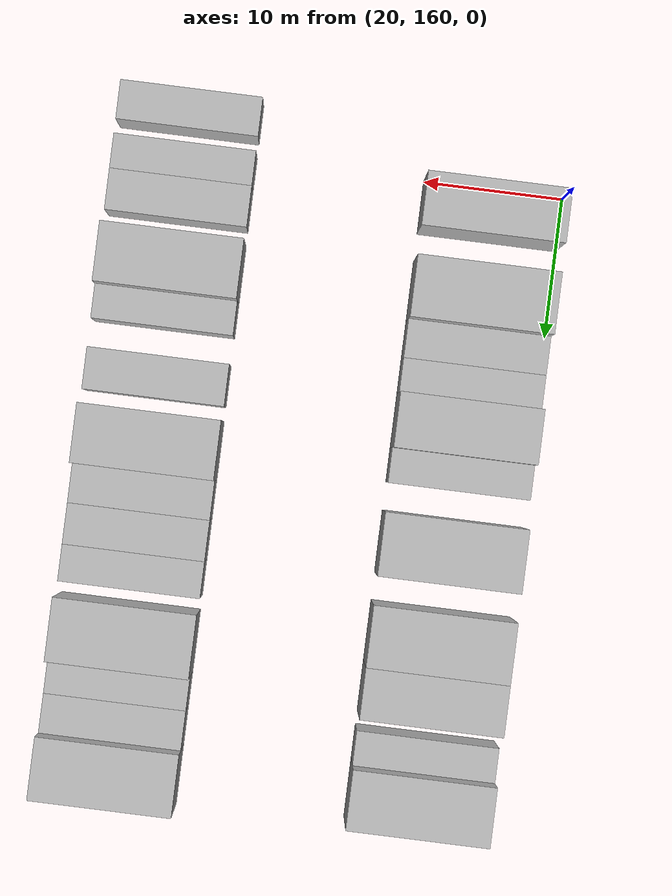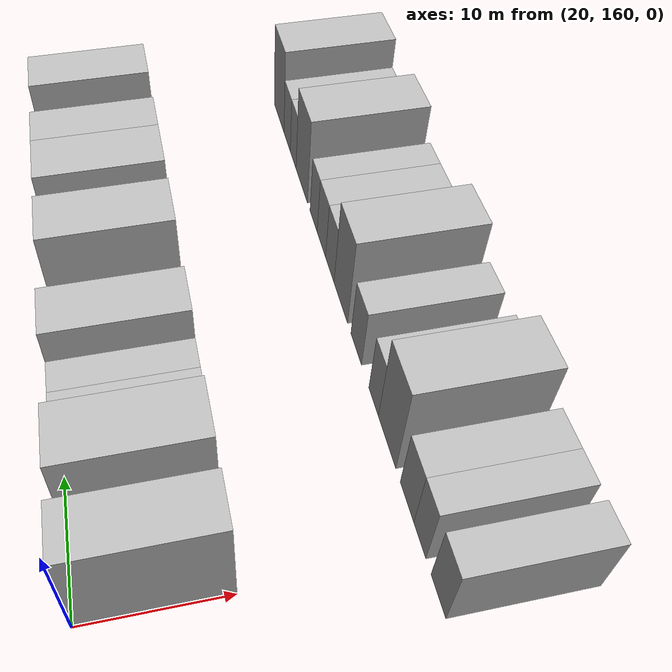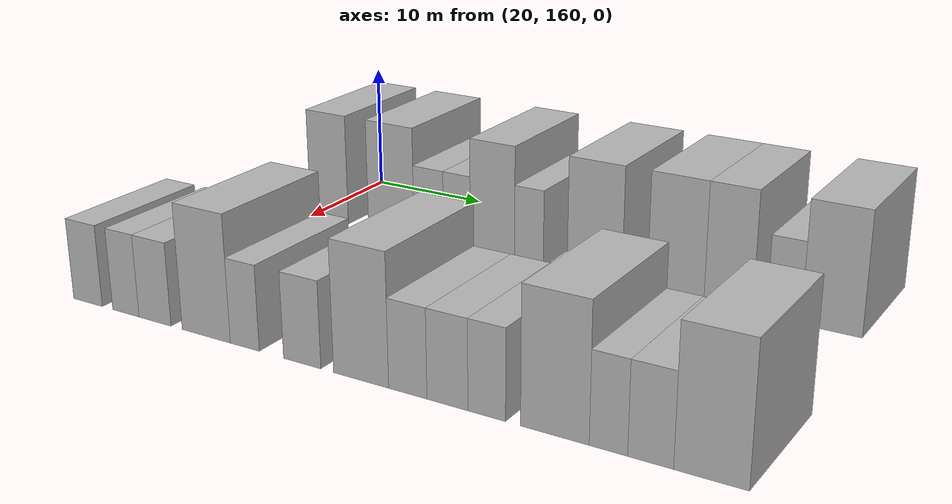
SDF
<sdf version="1.6">
 <world name="default">
  <model name="building_90">
   <static>1</static>
   <pose>25.0000 161.8635 0 0.000000 0.000000 0.000000</pose>
   <link name="link">
    <pose>0 0 4.50 0 0 0</pose>
    <collision name="collision"><geometry><box><size>10.0000 3.7841 9.0000</size></box></geometry></collision>
    <visual name="visual">
     <cast_shadows>0</cast_shadows>
     <geometry><box><size>10.0000 3.7841 9.0000</size></box></geometry>
     <material>
      <script>
       <uri>model://HANNAS_wall/materials/scripts</uri>
       <uri>model://HANNAS_wall/materials/textures</uri>
       <name>vrc/HANNAS_wall</name>
      </script>
     </material>
    </visual>
   </link>
  </model>
  <model name="building_91">
   <static>1</static>
   <pose>25.0000 167.9259 0 0.000000 0.000000 0.000000</pose>
   <link name="link">
    <pose>0 0 4.50 0 0 0</pose>
    <collision name="collision"><geometry><box><size>10.0000 4.3407 9.0000</size></box></geometry></collision>
    <visual name="visual">
     <cast_shadows>0</cast_shadows>
     <geometry><box><size>10.0000 4.3407 9.0000</size></box></geometry>
     <material>
      <script>
       <uri>model://HANNAS_wall/materials/scripts</uri>
       <uri>model://HANNAS_wall/materials/textures</uri>
       <name>vrc/HANNAS_wall</name>
      </script>
     </material>
    </visual>
   </link>
  </model>
  <model name="building_92">
   <static>1</static>
   <pose>25.0000 171.4656 0 0.000000 0.000000 0.000000</pose>
   <link name="link">
    <pose>0 0 3.00 0 0 0</pose>
    <collision name="collision"><geometry><box><size>10.0000 2.7387 6.0000</size></box></geometry></collision>
    <visual name="visual">
     <cast_shadows>0</cast_shadows>
     <geometry><box><size>10.0000 2.7387 6.0000</size></box></geometry>
     <material>
      <script>
       <uri>model://HANNAS_wall/materials/scripts</uri>
       <uri>model://HANNAS_wall/materials/textures</uri>
       <name>vrc/HANNAS_wall</name>
      </script>
     </material>
    </visual>
   </link>
  </model>
  <model name="building_93">
   <static>1</static>
   <pose>25.0000 174.0482 0 0.000000 0.000000 0.000000</pose>
   <link name="link">
    <pose>0 0 3.00 0 0 0</pose>
    <collision name="collision"><geometry><box><size>10.0000 2.4267 6.0000</size></box></geometry></collision>
    <visual name="visual">
     <cast_shadows>0</cast_shadows>
     <geometry><box><size>10.0000 2.4267 6.0000</size></box></geometry>
     <material>
      <script>
       <uri>model://HANNAS_wall/materials/scripts</uri>
       <uri>model://HANNAS_wall/materials/textures</uri>
       <name>vrc/HANNAS_wall</name>
      </script>
     </material>
    </visual>
   </link>
  </model>
  <model name="building_94">
   <static>1</static>
   <pose>25.0000 177.2059 0 0.000000 0.000000 0.000000</pose>
   <link name="link">
    <pose>0 0 4.50 0 0 0</pose>
    <collision name="collision"><geometry><box><size>10.0000 3.8887 9.0000</size></box></geometry></collision>
    <visual name="visual">
     <cast_shadows>0</cast_shadows>
     <geometry><box><size>10.0000 3.8887 9.0000</size></box></geometry>
     <material>
      <script>
       <uri>model://HANNAS_wall/materials/scripts</uri>
       <uri>model://HANNAS_wall/materials/textures</uri>
       <name>vrc/HANNAS_wall</name>
      </script>
     </material>
    </visual>
   </link>
  </model>
  <model name="building_95">
   <static>1</static>
   <pose>25.0000 180.3838 0 0.000000 0.000000 0.000000</pose>
   <link name="link">
    <pose>0 0 3.00 0 0 0</pose>
    <collision name="collision"><geometry><box><size>10.0000 2.4671 6.0000</size></box></geometry></collision>
    <visual name="visual">
     <cast_shadows>0</cast_shadows>
     <geometry><box><size>10.0000 2.4671 6.0000</size></box></geometry>
     <material>
      <script>
       <uri>model://HANNAS_wall/materials/scripts</uri>
       <uri>model://HANNAS_wall/materials/textures</uri>
       <name>vrc/HANNAS_wall</name>
      </script>
     </material>
    </visual>
   </link>
  </model>
  <model name="building_96">
   <static>1</static>
   <pose>25.0000 185.8501 0 0.000000 0.000000 0.000000</pose>
   <link name="link">
    <pose>0 0 4.50 0 0 0</pose>
    <collision name="collision"><geometry><box><size>10.0000 4.4653 9.0000</size></box></geometry></collision>
    <visual name="visual">
     <cast_shadows>0</cast_shadows>
     <geometry><box><size>10.0000 4.4653 9.0000</size></box></geometry>
     <material>
      <script>
       <uri>model://HANNAS_wall/materials/scripts</uri>
       <uri>model://HANNAS_wall/materials/textures</uri>
       <name>vrc/HANNAS_wall</name>
      </script>
     </material>
    </visual>
   </link>
  </model>
  <model name="building_97">
   <static>1</static>
   <pose>25.0000 192.2545 0 0.000000 0.000000 0.000000</pose>
   <link name="link">
    <pose>0 0 4.50 0 0 0</pose>
    <collision name="collision"><geometry><box><size>10.0000 4.3436 9.0000</size></box></geometry></collision>
    <visual name="visual">
     <cast_shadows>0</cast_shadows>
     <geometry><box><size>10.0000 4.3436 9.0000</size></box></geometry>
     <material>
      <script>
       <uri>model://HANNAS_wall/materials/scripts</uri>
       <uri>model://HANNAS_wall/materials/textures</uri>
       <name>vrc/HANNAS_wall</name>
      </script>
     </material>
    </visual>
   </link>
  </model>
  <model name="building_98">
   <static>1</static>
   <pose>25.0000 196.2273 0 0.000000 0.000000 0.000000</pose>
   <link name="link">
    <pose>0 0 4.50 0 0 0</pose>
    <collision name="collision"><geometry><box><size>10.0000 3.6019 9.0000</size></box></geometry></collision>
    <visual name="visual">
     <cast_shadows>0</cast_shadows>
     <geometry><box><size>10.0000 3.6019 9.0000</size></box></geometry>
     <material>
      <script>
       <uri>model://HANNAS_wall/materials/scripts</uri>
       <uri>model://HANNAS_wall/materials/textures</uri>
       <name>vrc/HANNAS_wall</name>
      </script>
     </material>
    </visual>
   </link>
  </model>
  <model name="building_99">
   <static>1</static>
   <pose>25.0000 200.2565 0 0.000000 0.000000 0.000000</pose>
   <link name="link">
    <pose>0 0 3.00 0 0 0</pose>
    <collision name="collision"><geometry><box><size>10.0000 2.4564 6.0000</size></box></geometry></collision>
    <visual name="visual">
     <cast_shadows>0</cast_shadows>
     <geometry><box><size>10.0000 2.4564 6.0000</size></box></geometry>
     <material>
      <script>
       <uri>model://HANNAS_wall/materials/scripts</uri>
       <uri>model://HANNAS_wall/materials/textures</uri>
       <name>vrc/HANNAS_wall</name>
      </script>
     </material>
    </visual>
   </link>
  </model>
  <model name="building_100">
   <static>1</static>
   <pose>25.0000 203.5905 0 0.000000 0.000000 0.000000</pose>
   <link name="link">
    <pose>0 0 4.50 0 0 0</pose>
    <collision name="collision"><geometry><box><size>10.0000 4.2116 9.0000</size></box></geometry></collision>
    <visual name="visual">
     <cast_shadows>0</cast_shadows>
     <geometry><box><size>10.0000 4.2116 9.0000</size></box></geometry>
     <material>
      <script>
       <uri>model://HANNAS_wall/materials/scripts</uri>
       <uri>model://HANNAS_wall/materials/textures</uri>
       <name>vrc/HANNAS_wall</name>
      </script>
     </material>
    </visual>
   </link>
  </model>
  <model name="building_185">
   <static>1</static>
   <pose>47.0000 157.4552 0 0.000000 0.000000 0.000000</pose>
   <link name="link">
    <pose>0 0 3.00 0 0 0</pose>
    <collision name="collision"><geometry><box><size>10.0000 2.7531 6.0000</size></box></geometry></collision>
    <visual name="visual">
     <cast_shadows>0</cast_shadows>
     <geometry><box><size>10.0000 2.7531 6.0000</size></box></geometry>
     <material>
      <script>
       <uri>model://HANNAS_wall/materials/scripts</uri>
       <uri>model://HANNAS_wall/materials/textures</uri>
       <name>vrc/HANNAS_wall</name>
      </script>
     </material>
    </visual>
   </link>
  </model>
  <model name="building_186">
   <static>1</static>
   <pose>47.0000 161.0598 0 0.000000 0.000000 0.000000</pose>
   <link name="link">
    <pose>0 0 3.00 0 0 0</pose>
    <collision name="collision"><geometry><box><size>10.0000 2.4561 6.0000</size></box></geometry></collision>
    <visual name="visual">
     <cast_shadows>0</cast_shadows>
     <geometry><box><size>10.0000 2.4561 6.0000</size></box></geometry>
     <material>
      <script>
       <uri>model://HANNAS_wall/materials/scripts</uri>
       <uri>model://HANNAS_wall/materials/textures</uri>
       <name>vrc/HANNAS_wall</name>
      </script>
     </material>
    </visual>
   </link>
  </model>
  <model name="building_187">
   <static>1</static>
   <pose>47.0000 163.7449 0 0.000000 0.000000 0.000000</pose>
   <link name="link">
    <pose>0 0 3.00 0 0 0</pose>
    <collision name="collision"><geometry><box><size>10.0000 2.9141 6.0000</size></box></geometry></collision>
    <visual name="visual">
     <cast_shadows>0</cast_shadows>
     <geometry><box><size>10.0000 2.9141 6.0000</size></box></geometry>
     <material>
      <script>
       <uri>model://HANNAS_wall/materials/scripts</uri>
       <uri>model://HANNAS_wall/materials/textures</uri>
       <name>vrc/HANNAS_wall</name>
      </script>
     </material>
    </visual>
   </link>
  </model>
  <model name="building_188">
   <static>1</static>
   <pose>47.0000 168.2943 0 0.000000 0.000000 0.000000</pose>
   <link name="link">
    <pose>0 0 4.50 0 0 0</pose>
    <collision name="collision"><geometry><box><size>10.0000 4.1848 9.0000</size></box></geometry></collision>
    <visual name="visual">
     <cast_shadows>0</cast_shadows>
     <geometry><box><size>10.0000 4.1848 9.0000</size></box></geometry>
     <material>
      <script>
       <uri>model://HANNAS_wall/materials/scripts</uri>
       <uri>model://HANNAS_wall/materials/textures</uri>
       <name>vrc/HANNAS_wall</name>
      </script>
     </material>
    </visual>
   </link>
  </model>
  <model name="building_189">
   <static>1</static>
   <pose>47.0000 171.6036 0 0.000000 0.000000 0.000000</pose>
   <link name="link">
    <pose>0 0 3.00 0 0 0</pose>
    <collision name="collision"><geometry><box><size>10.0000 2.4338 6.0000</size></box></geometry></collision>
    <visual name="visual">
     <cast_shadows>0</cast_shadows>
     <geometry><box><size>10.0000 2.4338 6.0000</size></box></geometry>
     <material>
      <script>
       <uri>model://HANNAS_wall/materials/scripts</uri>
       <uri>model://HANNAS_wall/materials/textures</uri>
       <name>vrc/HANNAS_wall</name>
      </script>
     </material>
    </visual>
   </link>
  </model>
  <model name="building_190">
   <static>1</static>
   <pose>47.0000 176.3093 0 0.000000 0.000000 0.000000</pose>
   <link name="link">
    <pose>0 0 3.00 0 0 0</pose>
    <collision name="collision"><geometry><box><size>10.0000 2.9776 6.0000</size></box></geometry></collision>
    <visual name="visual">
     <cast_shadows>0</cast_shadows>
     <geometry><box><size>10.0000 2.9776 6.0000</size></box></geometry>
     <material>
      <script>
       <uri>model://HANNAS_wall/materials/scripts</uri>
       <uri>model://HANNAS_wall/materials/textures</uri>
       <name>vrc/HANNAS_wall</name>
      </script>
     </material>
    </visual>
   </link>
  </model>
  <model name="building_191">
   <static>1</static>
   <pose>47.0000 180.8910 0 0.000000 0.000000 0.000000</pose>
   <link name="link">
    <pose>0 0 4.50 0 0 0</pose>
    <collision name="collision"><geometry><box><size>10.0000 4.1858 9.0000</size></box></geometry></collision>
    <visual name="visual">
     <cast_shadows>0</cast_shadows>
     <geometry><box><size>10.0000 4.1858 9.0000</size></box></geometry>
     <material>
      <script>
       <uri>model://HANNAS_wall/materials/scripts</uri>
       <uri>model://HANNAS_wall/materials/textures</uri>
       <name>vrc/HANNAS_wall</name>
      </script>
     </material>
    </visual>
   </link>
  </model>
  <model name="building_192">
   <static>1</static>
   <pose>47.0000 184.3866 0 0.000000 0.000000 0.000000</pose>
   <link name="link">
    <pose>0 0 3.00 0 0 0</pose>
    <collision name="collision"><geometry><box><size>10.0000 2.8053 6.0000</size></box></geometry></collision>
    <visual name="visual">
     <cast_shadows>0</cast_shadows>
     <geometry><box><size>10.0000 2.8053 6.0000</size></box></geometry>
     <material>
      <script>
       <uri>model://HANNAS_wall/materials/scripts</uri>
       <uri>model://HANNAS_wall/materials/textures</uri>
       <name>vrc/HANNAS_wall</name>
      </script>
     </material>
    </visual>
   </link>
  </model>
  <model name="building_193">
   <static>1</static>
   <pose>47.0000 187.2413 0 0.000000 0.000000 0.000000</pose>
   <link name="link">
    <pose>0 0 3.00 0 0 0</pose>
    <collision name="collision"><geometry><box><size>10.0000 2.9040 6.0000</size></box></geometry></collision>
    <visual name="visual">
     <cast_shadows>0</cast_shadows>
     <geometry><box><size>10.0000 2.9040 6.0000</size></box></geometry>
     <material>
      <script>
       <uri>model://HANNAS_wall/materials/scripts</uri>
       <uri>model://HANNAS_wall/materials/textures</uri>
       <name>vrc/HANNAS_wall</name>
      </script>
     </material>
    </visual>
   </link>
  </model>
  <model name="building_194">
   <static>1</static>
   <pose>47.0000 189.9912 0 0.000000 0.000000 0.000000</pose>
   <link name="link">
    <pose>0 0 3.00 0 0 0</pose>
    <collision name="collision"><geometry><box><size>10.0000 2.5958 6.0000</size></box></geometry></collision>
    <visual name="visual">
     <cast_shadows>0</cast_shadows>
     <geometry><box><size>10.0000 2.5958 6.0000</size></box></geometry>
     <material>
      <script>
       <uri>model://HANNAS_wall/materials/scripts</uri>
       <uri>model://HANNAS_wall/materials/textures</uri>
       <name>vrc/HANNAS_wall</name>
      </script>
     </material>
    </visual>
   </link>
  </model>
  <model name="building_195">
   <static>1</static>
   <pose>47.0000 194.5288 0 0.000000 0.000000 0.000000</pose>
   <link name="link">
    <pose>0 0 4.50 0 0 0</pose>
    <collision name="collision"><geometry><box><size>10.0000 4.4794 9.0000</size></box></geometry></collision>
    <visual name="visual">
     <cast_shadows>0</cast_shadows>
     <geometry><box><size>10.0000 4.4794 9.0000</size></box></geometry>
     <material>
      <script>
       <uri>model://HANNAS_wall/materials/scripts</uri>
       <uri>model://HANNAS_wall/materials/textures</uri>
       <name>vrc/HANNAS_wall</name>
      </script>
     </material>
    </visual>
   </link>
  </model>
  <model name="building_196">
   <static>1</static>
   <pose>47.0000 197.9688 0 0.000000 0.000000 0.000000</pose>
   <link name="link">
    <pose>0 0 3.00 0 0 0</pose>
    <collision name="collision"><geometry><box><size>10.0000 2.4005 6.0000</size></box></geometry></collision>
    <visual name="visual">
     <cast_shadows>0</cast_shadows>
     <geometry><box><size>10.0000 2.4005 6.0000</size></box></geometry>
     <material>
      <script>
       <uri>model://HANNAS_wall/materials/scripts</uri>
       <uri>model://HANNAS_wall/materials/textures</uri>
       <name>vrc/HANNAS_wall</name>
      </script>
     </material>
    </visual>
   </link>
  </model>
  <model name="building_197">
   <static>1</static>
   <pose>47.0000 200.5644 0 0.000000 0.000000 0.000000</pose>
   <link name="link">
    <pose>0 0 3.00 0 0 0</pose>
    <collision name="collision"><geometry><box><size>10.0000 2.7906 6.0000</size></box></geometry></collision>
    <visual name="visual">
     <cast_shadows>0</cast_shadows>
     <geometry><box><size>10.0000 2.7906 6.0000</size></box></geometry>
     <material>
      <script>
       <uri>model://HANNAS_wall/materials/scripts</uri>
       <uri>model://HANNAS_wall/materials/textures</uri>
       <name>vrc/HANNAS_wall</name>
      </script>
     </material>
    </visual>
   </link>
  </model>
  <model name="building_198">
   <static>1</static>
   <pose>47.0000 204.1648 0 0.000000 0.000000 0.000000</pose>
   <link name="link">
    <pose>0 0 4.50 0 0 0</pose>
    <collision name="collision"><geometry><box><size>10.0000 4.4102 9.0000</size></box></geometry></collision>
    <visual name="visual">
     <cast_shadows>0</cast_shadows>
     <geometry><box><size>10.0000 4.4102 9.0000</size></box></geometry>
     <material>
      <script>
       <uri>model://HANNAS_wall/materials/scripts</uri>
       <uri>model://HANNAS_wall/materials/textures</uri>
       <name>vrc/HANNAS_wall</name>
      </script>
     </material>
    </visual>
   </link>
  </model>
 </world>
</sdf>
